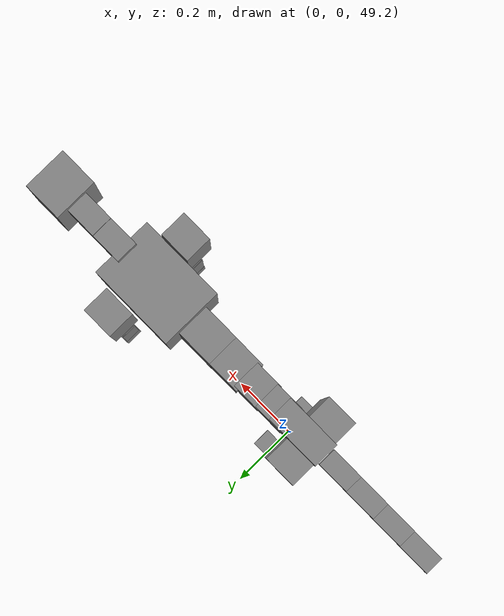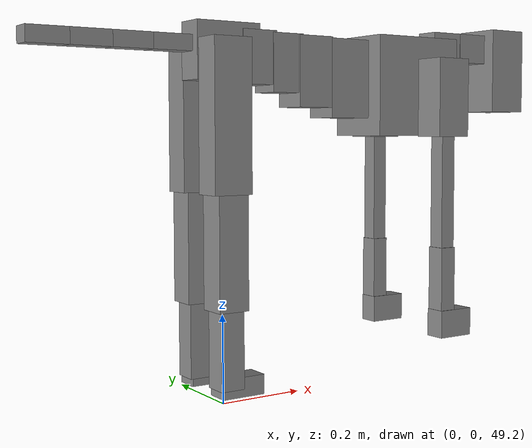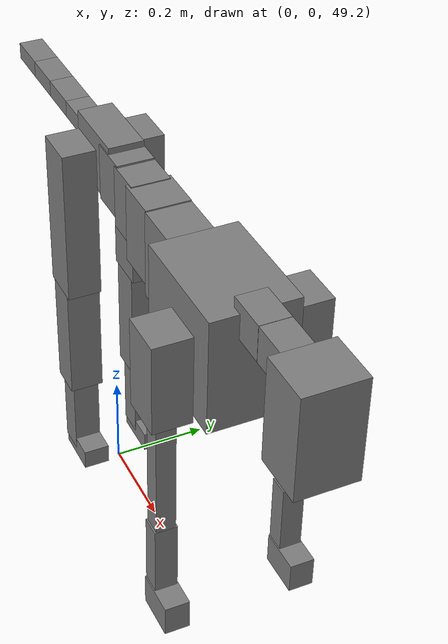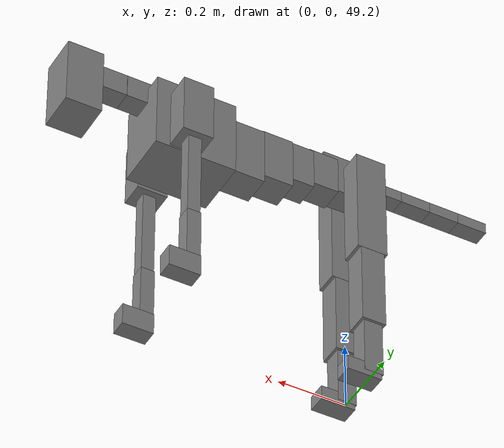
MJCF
<mujoco model="dog">

    <default>
        <joint armature="0.02" stiffness="1" damping="0.2" limited="true"/>
        <geom condim="3" friction="1 0.05 0.05" margin="0.01"/>
        <motor ctrllimited="true" ctrlrange="-1.0 1.0" forcelimited="true" gear="50"/>
    </default>

    <compiler inertiafromgeom="true" angle="radian"/>

    <option timestep="0.016" iterations="50" tolerance="1e-10" solver="Newton" jacobian="dense" cone="pyramidal"/>

    <size nconmax="20000" njmax="60000" nstack="5000000"/>
    <visual>
        <map force="0.1" zfar="30"/>
        <rgba haze="0.15 0.25 0.35 1"/>
        <quality shadowsize="2048"/>
        <global offwidth="800" offheight="800"/>
    </visual>

    <asset>
        <texture type="skybox" builtin="gradient" rgb1="0.3 0.5 0.7" rgb2="0 0 0" width="512" height="512"/>
        <texture name="texplane" type="2d" builtin="checker" rgb1=".2 .3 .4" rgb2=".1 0.15 0.2" width="512" height="512"
                 mark="cross" markrgb=".8 .8 .8"/>
        <texture name="texgeom" type="cube" builtin="flat" mark="cross" width="127" height="1278" rgb1="0.8 0.6 0.4"
                 rgb2="0.8 0.6 0.4" markrgb="1 1 1" random="0.01"/>

        <material name="matplane" reflectance="0.3" texture="texplane" texrepeat="1 1" texuniform="true"/>
        <material name="matgeom" texture="texgeom" texuniform="true" rgba="0.8 0.6 .4 1"/>
    </asset>

    <worldbody>
        <geom name="floor" pos="0 0 0" size="0 0 .25" type="plane" material="matplane" condim="3"/>

        <light directional="false" diffuse=".2 .2 .2" specular="0 0 0" pos="0 0 5" dir="0 0 -1" castshadow="false"/>
        <light mode="targetbodycom" target="torso" directional="false" diffuse=".8 .8 .8" specular="0.3 0.3 0.3"
               pos="0 0 4.0" dir="0 0 -1"/>

        <body name="root" pos="0 0 50">
            <freejoint name="root_1"/>
            <geom type="box" pos="0 0 -0.02" size="0.0774  0.0358  0.063" density="2030"/>

            <body name="spine1" pos="0.054 0 0">
                <joint name="spine1_y" axis="0 1 0" range="0 0.7" limited="true"/>
                <geom type="box" pos="0.02375 0 -0.03" size="0.04375  0.0375  0.05985" density="2030"/>

                <body name="spine2" pos="0.0612 0 0">
                    <joint name="spine2_y" axis="0 1 0" range="-0.15 0.15" limited="true"/>
                    <geom type="box" pos="0.03555  0  -0.04" size="0.04055  0.039  0.06615" density="2030"/>

                    <body name="spine3" pos="0.0730 0 0">
                        <joint name="spine3_y" axis="0 1 0" range="-0.15 0.15" limited="true"/>
                        <geom type="box" pos="0.03555  0  -0.057" size="0.04555  0.0445  0.081" density="2030"/>

                        <body name="spine4" pos="0.0780 0 0">
                            <joint name="spine4_y" axis="0 1 0" range="-0.15 0.15" limited="true"/>
                            <geom type="box" pos="0.05265  0  -0.07" size="0.05265  0.045  0.09135" density="2030"/>

                            <body name="torso" pos="0.1082 0 0">
                                <joint name="torso_y" axis="0 1 0" range="-0.15 0.15" limited="true"/>
                                <geom type="box" pos="0.11925  0  -0.085" size="0.11925  0.085  0.11745"
                                      density="2030"/>

                                <body name="neck1" pos="0.2160  0   0.0180">
                                    <joint name="neck1_y" axis="0 1 0" range="-1.2  -1" limited="true"/>
                                    <geom type="box" pos="0.0423  0  0" size="0.0423  0.03  0.036" density="2325"/>

                                    <body name="neck2" pos="0.0853  0  0">
                                        <joint name="neck2_y" axis="0 1 0" range="0.1  0" limited="true"/>
                                        <geom type="box" pos="0.0423  0  0" size="0.0423  0.03  0.036" density="2325"/>

                                        <body name="head" pos="0.0853  0  0">
                                            <joint name="head_y" axis="0 1 0" range="-0.3  -0.2" limited="true"/>
                                            <geom type="box" pos="0.0531  0  -0.055" size="0.0531  0.06  0.1044"
                                                  density="4030"/>

                                        </body>
                                    </body>
                                </body>

                                <body name="front_shoulder" pos="0.156  0   -0.0480">
                                    <joint name="front_shoulder_y" axis="0 1 0" range="-1 1.5" limited="true"/>
                                    <geom type="box" pos="0 0.13 -0.0653" size="0.0446  0.0381  0.0920" density="1158"/>
                                    <geom type="box" pos="0 -0.13 -0.0653" size="0.0446  0.0381  0.0920"
                                          density="1158"/>

                                    <body name="front_elbow" pos="0  0  -0.1307">
                                        <joint name="front_elbow_y" axis="0 1 0" range="-2 0" limited="true"/>
                                        <geom type="box" pos="0 0.13 -0.1520" size="0.0190  0.0194  0.1520"
                                              density="1081"/>
                                        <geom type="box" pos="0 -0.13 -0.1520" size="0.0190  0.0194  0.1520"
                                              density="1081"/>

                                        <body name="front_wrist" pos="0  0  -0.3039">
                                            <joint name="front_wrist_y" axis="0 1 0" range="-0.2 0" limited="true"/>
                                            <geom type="box" pos="0 0.13 -0.0762" size="0.0204  0.0226  0.0894"
                                                  density="1664"/>
                                            <geom type="box" pos="0 -0.13 -0.0762" size="0.0204  0.0226  0.0894"
                                                  density="1664"/>

                                            <body name="front_finger_end" pos="0  0  -0.1524">
                                                <joint name="front_finger_y" axis="0 1 0" range="-0.4 1"
                                                       limited="true"/>
                                                <geom type="box" pos="0.0250  0.13  -0.0178"
                                                      size="0.0458  0.0250  0.0328" density="1515"/>
                                                <geom type="box" pos="0.0250  -0.13  -0.0178"
                                                      size="0.0458  0.0250  0.0328" density="1515"/>

                                            </body>

                                        </body>
                                    </body>
                                </body>

                            </body>
                        </body>
                    </body>
                </body>
            </body>

            <body name="back_hip" pos="-0.03 0 -0.018">
                <joint name="back_hip_y" axis="0 1 0" range="-1.5 0.3" limited="true"/>
                <geom type="box" pos="0 0.07 -0.1435" size="0.0449  0.0352  0.1663" density="1154"/>
                <geom type="box" pos="0 -0.07 -0.1435" size="0.0449  0.0352  0.1663" density="1154"/>

                <body name="back_knee" pos="0  0  -0.2869">
                    <joint name="back_knee_y" axis="0 1 0" range="0 2.8" limited="true"/>
                    <geom type="box" pos="0 0.07 -0.1279" size="0.0354  0.0349  0.1435" density="1227"/>
                    <geom type="box" pos="0 -0.07 -0.1279" size="0.0354  0.0349  0.1435" density="1227"/>

                    <body name="back_ankle" pos="0  0  -0.2558">
                        <joint name="back_ankle_y" axis="0 1 0" range="-2.2 0" limited="true"/>
                        <geom type="box" pos="0 0.07 -0.0871" size="0.0278  0.0278  0.0983" density="1284"/>
                        <geom type="box" pos="0 -0.07 -0.0871" size="0.0278  0.0278  0.0983" density="1284"/>

                        <body name="back_toe_end" pos="0  0  -0.1741">
                            <joint name="back_toe_y" axis="0 1 0" range="-0.4 1" limited="true"/>
                            <geom type="box" pos="0.0275  0.07  -0.0068" size="0.0504  0.0275  0.0218" density="1515"/>
                            <geom type="box" pos="0.0275  -0.07  -0.0068" size="0.0504  0.0275  0.0218" density="1515"/>

                        </body>
                    </body>
                </body>
            </body>

            <body name="tail1" pos="-0.074 0 -0.006">
                <joint name="tail1_y" axis="0 1 0" range="-0.2 0.2" limited="true"/>
                <geom type="box" pos="-0.0536  0  0" size="0.045  0.025  0.0175" density="1587"/>

                <body name="tail2" pos="-0.09 0 0">
                    <joint name="tail2_y" axis="0 1 0" range="-0.2 0.2" limited="true"/>
                    <geom type="box" pos="-0.0536  0  0" size="0.045  0.025  0.0175" density="1587"/>

                    <body name="tail3" pos="-0.09 0 0">
                        <joint name="tail3_y" axis="0 1 0" range="-0.2 0.2" limited="true"/>
                        <geom type="box" pos="-0.0536  0  0" size="0.045  0.025  0.0175" density="1587"/>

                        <body name="tail4" pos="-0.09 0 0">
                            <joint name="tail4_y" axis="0 1 0" range="-0.2 0.2" limited="true"/>
                            <geom type="box" pos="-0.0536  0  0" size="0.045  0.025  0.0175" density="1587"/>

                        </body>
                    </body>
                </body>
            </body>
        </body>
    </worldbody>

    <actuator>
        <motor joint="spine1_y" forcerange="-150 150     "/>
        <motor joint="spine2_y" forcerange="-150 150     "/>
        <motor joint="spine3_y" forcerange="-150 150     "/>
        <motor joint="spine4_y" forcerange="-150 150     "/>
        <motor joint="torso_y" forcerange="-150 150     "/>
        <motor joint="neck1_y" forcerange="-100 100       "/>
        <motor joint="neck2_y" forcerange="-100 100       "/>
        <motor joint="head_y" forcerange="-150 150       "/>
        <motor joint="front_shoulder_y" forcerange="-159.27 194.86"/>
        <motor joint="front_elbow_y" forcerange="-102.13 139.00"/>
        <motor joint="front_wrist_y" forcerange="-90.26 90.70"/>
        <motor joint="front_finger_y" forcerange="-56.24 37.05"/>
        <motor joint="back_hip_y" forcerange="-322.47 347.29"/>
        <motor joint="back_knee_y" forcerange="-351.62 356.34"/>
        <motor joint="back_angle_y" forcerange="-140.85 204.72"/>
        <motor joint="back_toe_y" forcerange="-51.42 88.66"/>
        <motor joint="tail1_y" forcerange="-50 50     "/>
        <motor joint="tail2_y" forcerange="-50 50     "/>
        <motor joint="tail3_y" forcerange="-50 50     "/>
        <motor joint="tail4_y" forcerange="-50 50     "/>
    </actuator>
</mujoco>
